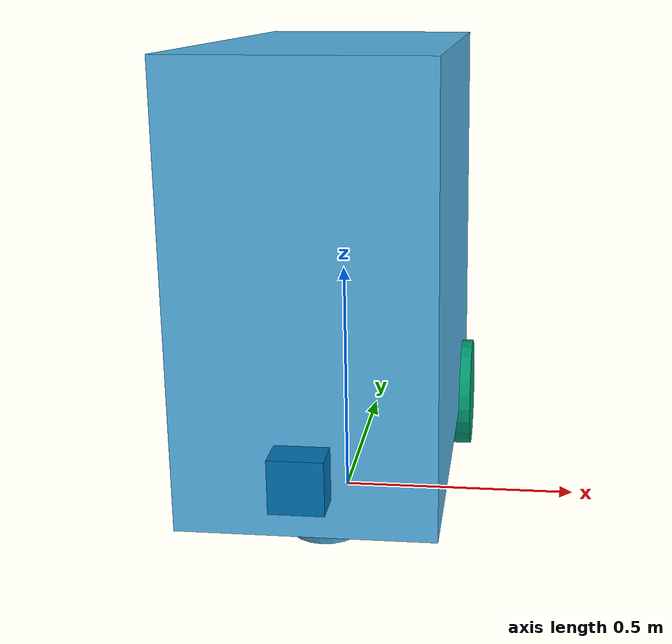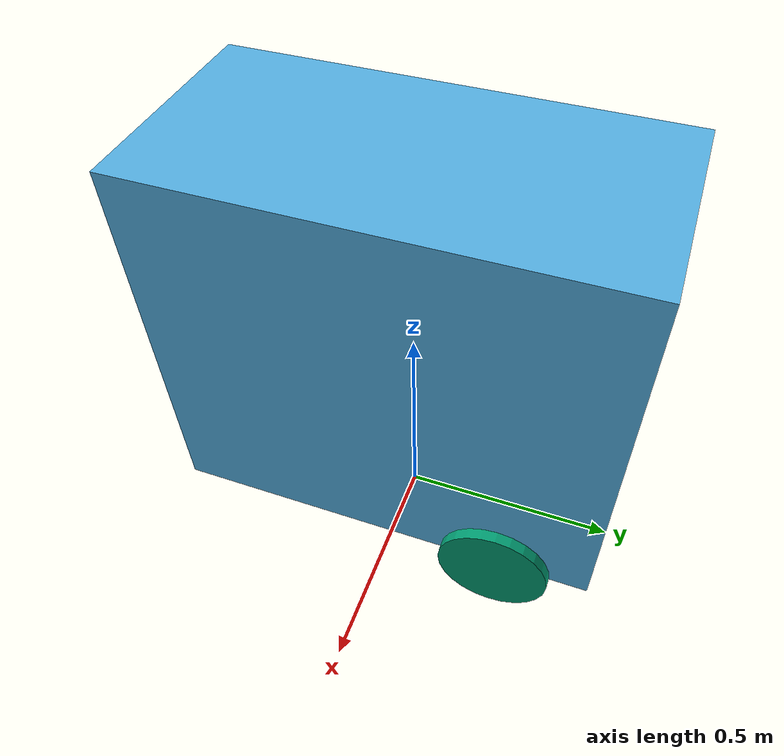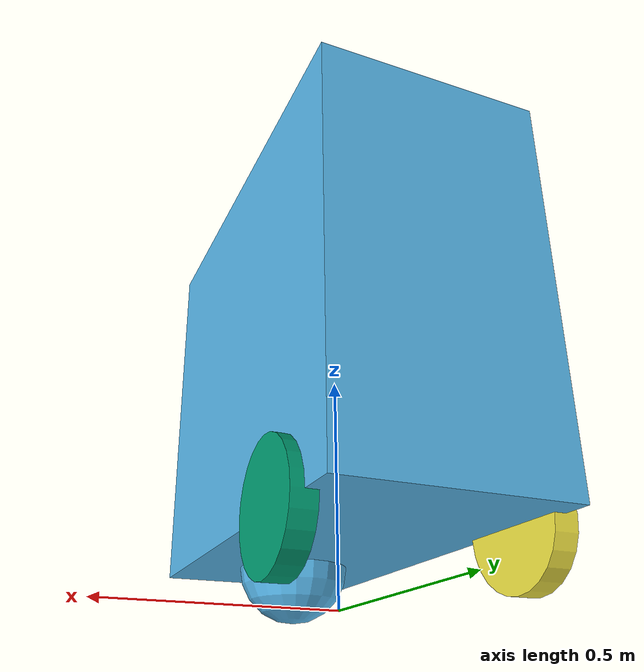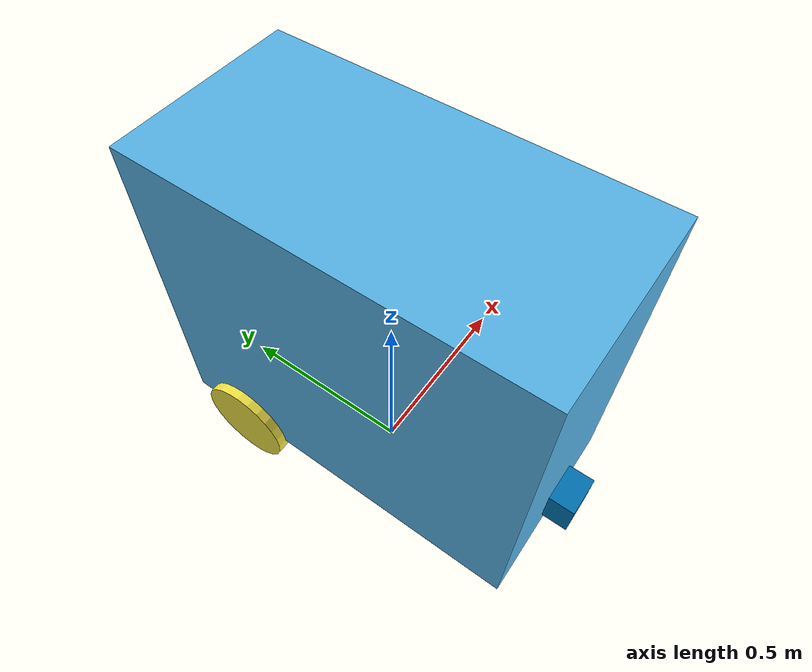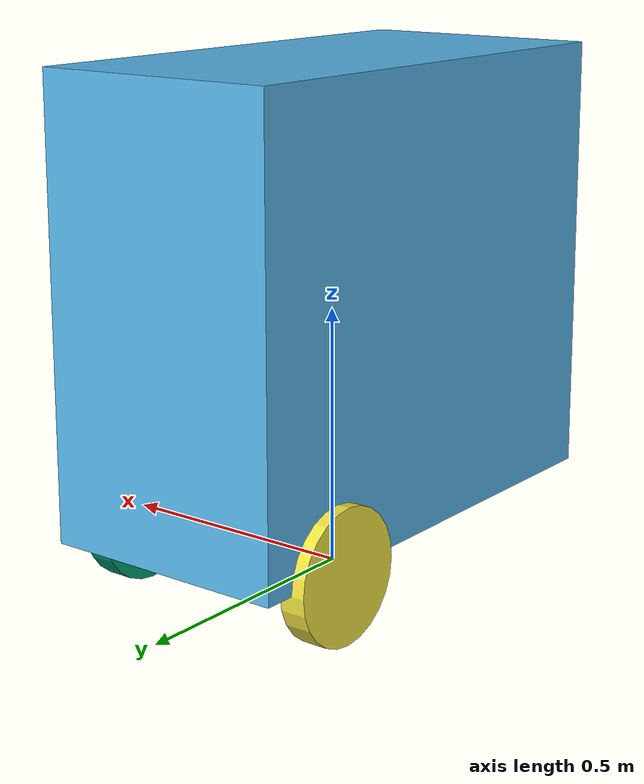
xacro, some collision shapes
<?xml version='1.0'?>

<robot name="robot" xmlns:xacro="http://www.ros.org/wiki/xacro">

  <xacro:include filename="$(find robot_model)/urdf/sb2_test.gazebo" />

  <!-- Dummy Base Footprint-->
  <link name="base_footprint"></link>

  <!-- Chassis Link - Base -->
  <link name='base_link'>
    <inertial>
      <mass value="1.0"/>
      <origin xyz="0.0 0 0.55" rpy="0 0 0"/>
      <inertia
          ixx="0.1" ixy="0" ixz="0"
          iyy="0.1" iyz="0"
          izz="0.1" />
    </inertial>

    <collision name='collision'>
     <origin xyz="0 0 0.55" rpy=" 0 0 0"/>
      <geometry>
        <box size=".4806 .97 .85"/>
      </geometry>
    </collision>

    <visual name='chassis_visual'>
      <origin xyz="0 0 0.55" rpy=" 0 0 0"/>
      <geometry>
        <box size=".4806 .97 .85"/>
      </geometry>
    </visual>

    <collision name='caster_collision'>
      <origin xyz="0 -0.25 0.125" rpy=" 0 0 0"/>
      <geometry>
        <sphere radius="0.125"/>
      </geometry>
      <surface>
        <friction>
          <ode>
            <mu>0</mu>
            <mu2>0</mu2>
            <slip1>1.0</slip1>
            <slip2>1.0</slip2>
          </ode>
        </friction>
      </surface>
    </collision>

    <visual name='caster_visual'>
      <origin xyz="0 -0.25 0.125" rpy=" 0 0 0"/>
      <geometry>
        <sphere radius="0.125"/>
      </geometry>
    </visual>

  </link>

  <!-- Left Wheel Link-->
  <link name="left_wheel">
    <collision name="lw_collision">
      <origin xyz="0.2403 0.125 0.125" rpy="-1.5707 -0 1.5707"/>
      <geometry>
        <cylinder radius="0.125" length="0.05"/>
      </geometry>
    </collision>
    <visual name="left_wheel_visual">
      <origin xyz="0.2403 0.125 0.125" rpy="-1.5707 -0 1.5707"/>
      <geometry>
        <cylinder radius="0.125" length="0.05"/>
      </geometry>
    </visual>
    <inertial>
      <origin xyz="0.2403 0.125 0.125" rpy="-1.5707 -0 1.5707"/>
      <mass value="1"/>
      <inertia
        ixx=".1" ixy="0.0" ixz="0.0"
        iyy=".1" iyz="0.0"
        izz=".1"/>
    </inertial>
  </link>

  <!-- Right wheel Link-->
  <link name="right_wheel">

    <collision name="rw_collision">
      <origin xyz="-0.2403 0.450 0.125" rpy="1.5707 -0 -1.5707"/>
      <geometry>
        <cylinder radius="0.125" length="0.05"/>
      </geometry>
    </collision>
    <visual name="right_wheel_visual">
      <origin xyz="-0.2403 0.450 0.125" rpy="1.5707 -0 -1.5707"/>
      <geometry>
        <cylinder radius="0.125" length="0.05"/>
      </geometry>
    </visual>
    <inertial>
      <origin xyz="-0.2403 0.450 0.125" rpy="1.5707 -0 -1.5707"/>
      <mass value="5"/>
      <inertia
        ixx=".1" ixy="0.0" ixz="0.0"
        iyy=".1" iyz="0.0"
        izz=".1"/>
    </inertial>
  </link>

  <!-- Hokuyo Laser Scanner Link -->
  <link name="hokuyo">

    <collision>
      <origin xyz="-0 -0 0" rpy="0 0 0"/>
      <geometry>
    <box size="0.1 0.1 0.1"/>
      </geometry>
    </collision>

    <visual>
      <origin xyz="-0 -0 0" rpy="0 0 0"/>
      <geometry>
        <mesh filename="package://robot_model/meshes/hokuyo.dae"/>
      </geometry>
    </visual>

    <inertial>
      <mass value="1e-5" />
      <origin xyz="-0 -0 0" rpy="0 0 0"/>
      <inertia ixx="1e-6" ixy="0" ixz="0" iyy="1e-6" iyz="0" izz="1e-6" />
    </inertial>

  </link>

  <!-- Base to footprint Joint-->
  <joint name="base_to_footprint_joint" type="fixed">
     <child link="base_link"/>
     <parent link="base_footprint"/>
  </joint>

  <!-- Left Wheel Joint-->
  <joint type="continuous" name="left_wheel_hinge">
    <origin xyz="0 0.15 0" rpy="0 0 0"/>
    <child link="left_wheel"/>
    <parent link="base_link"/>
    <axis xyz="0 0 1" rpy="0 0 0"/>
    <limit effort="10000" velocity="1000"/>
    <joint_properties damping="1.0" friction="1.0"/>
  </joint>

  <!-- Right Wheel Joint-->
  <joint type="continuous" name="right_wheel_hinge">
    <origin xyz="0 -0.15 0" rpy="0 0 0"/>
    <child link="right_wheel"/>
    <parent link="base_link"/>
    <axis xyz="0 0 1" rpy="0 0 0"/>
    <limit effort="10000" velocity="1000"/>
    <joint_properties damping="1.0" friction="1.0"/>
  </joint>

  <!-- Hokuyo Laser Joint -->
  <joint name="hokuyo_joint" type="fixed">
    <axis xyz="0 0 1" />
    <origin xyz="0 -0.5 0.250" rpy="0 3.14 1.57"/>
    <parent link="base_link"/>
    <child link="hokuyo"/>
  </joint>

</robot>
